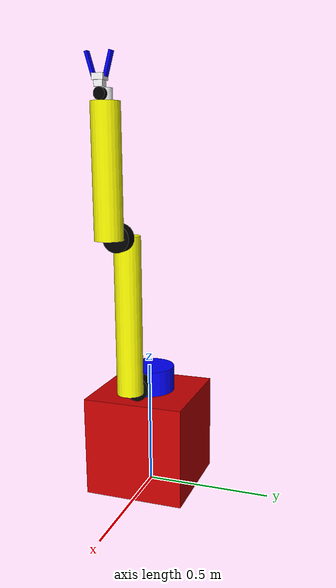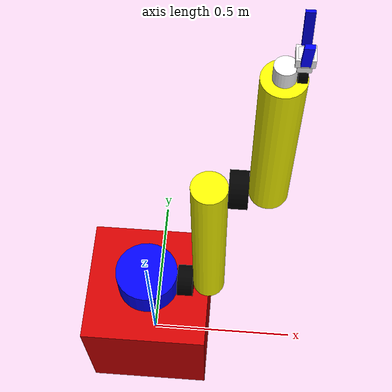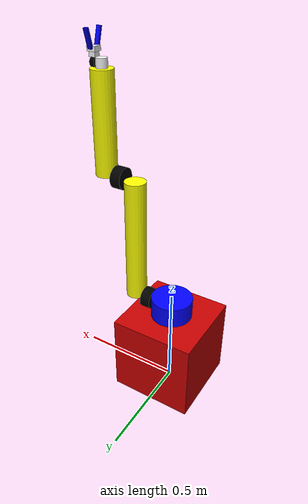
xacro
<?xml version="1.0" encoding="utf-8"?>
	<robot name="box_robots" xmlns:xacro="http://ros.org/wiki/xacro">
		<xacro:property name="box_length" value="0.4" />
                <xacro:property name="box_y" value="0.4" />
                <xacro:property name="box_z" value="0.4" />
		<xacro:property name="link1_radius" value="0.1" />
                <xacro:property name="link1_length" value="0.1" />
                <xacro:property name="link2_radius" value="0.05" />
		<xacro:property name="link2_length" value="0.05" />
                <xacro:property name="link3_radius" value="0.05" />
                <xacro:property name="link3_length" value="0.6" />
 		<xacro:property name="link4_radius" value="0.05" />
		<xacro:property name="link4_length" value="0.05" />
		<xacro:property name="link5_radius" value="0.05" />
		<xacro:property name="link5_length" value="0.45" />
		<xacro:property name="link6_radius" value="0.025" />
		<xacro:property name="link6_length" value="0.04" />
		<xacro:property name="link7_radius" value="0.02" />
		<xacro:property name="link7_length" value="0.02" />
		<xacro:property name="link8_x" value="0.03" />
                <xacro:property name="link8_y" value="0.03" />
                <xacro:property name="link8_z" value="0.04" />
		<xacro:property name="link9_x" value="0.04" />
                <xacro:property name="link9_y" value="0.04" />
                <xacro:property name="link9_z" value="0.02" />
		<xacro:property name="link10_x" value="0.08" />
                <xacro:property name="link10_y" value="0.01" />
                <xacro:property name="link10_z" value="0.02" />
		<xacro:property name="link11_x" value="0.08" />
                <xacro:property name="link11_y" value="0.01" />
                <xacro:property name="link11_z" value="0.02" />

		<material name="blue">
				<color rgba="0 0 1 1"/>
		</material>

		<material name="black">
				<color rgba="0 0 0 1"/>
		</material>

		<material name="white">
				<color rgba="1 1 1 1"/>
		</material>

		<material name="red">
				<color rgba="0.8 0 0 1"/>
		</material>

		<material name="green">
				<color rgba="0 1 0 1"/>
		</material>

		<material name="yellow">
				<color rgba="1 1 0 1"/>
		</material>

		<link name ="world"/>
		<link name="box">
				<visual>
				    <geometry>
				        <box size="${box_length} ${box_y} ${box_z}"/>
				    </geometry>
				    <origin xyz="0 0 ${box_z/2}"/>
				    <material name ="red"/>
				</visual>
				<collision>
					<geometry>
						 <box size="${box_length} ${box_y} ${box_z}"/>
					</geometry>
				</collision>
				<inertial>
					<mass value="50.0"/>
					<inertia ixx="0.1" ixy="0.0" ixz="0.0" iyy="0.1" iyz="0.0" izz="0.1"/>
				</inertial>
		</link>
		<joint name="world_to_box" type="fixed">
			<origin xyz="0 0 0" rpy="0 0 0"/>
			<parent link="world"/>
			<child link="box"/>
		</joint>

		<link name="link1">
				<visual>
				    <geometry>
				        <cylinder radius="${link1_radius}" length="${link1_length}"/>
				    </geometry>
				    <origin xyz="0 0 ${link1_length/2}"/>
				    <material name ="blue"/>
				</visual>
				<inertial>
					<mass value="1.0"/>
					<inertia ixx="0.1" ixy="0.0" ixz="0.0" iyy="0.1" iyz="0.0" izz="0.1"/>
				</inertial>
				<collision>
					<geometry>
						 <cylinder radius="${link1_radius}" length="${link1_length}"/>
					</geometry>
				</collision>
		</link>
		<joint name="box_link1" type="revolute">
			<axis xyz="0 0 1"/>
			<limit effort="100.0" lower="-3.1416" upper="3.1416" velocity="0.1"/>
			<parent link="box"/>
			<child link="link1"/>
			<origin rpy="0 0 0" xyz="0 0 ${box_z}"/>
		</joint>

		<link name="link2">
				<visual>
				    <geometry>
				        <cylinder radius="${link2_radius}" length="${link2_length}"/>
				    </geometry>
				    <origin rpy='0 1.57 0' xyz="${link2_radius/2} 0 0"/>
				    <material name ="black"/>
				</visual>
				<inertial>
					<mass value="0.5"/>
					<inertia ixx="0.1" ixy="0.0" ixz="0.0" iyy="0.1" iyz="0.0" izz="0.1"/>
				</inertial>
				<collision>
					<geometry>
						 <cylinder radius="${link2_radius}" length="${link2_length}"/>
					</geometry>
				</collision>
		</link>
		<joint name="link1_link2" type="fixed">
			<parent link="link1"/>
			<child link="link2"/>
			<origin rpy="0 0 0" xyz="${link1_radius} 0 ${link1_length/2}"/>
		</joint>
		<link name="link3">
				<visual>
				    <geometry>
				        <cylinder radius="${link3_radius}" length="${link3_length}"/>
				    </geometry>
				    <origin rpy='0 0 0' xyz="${link3_radius} 0 ${link3_length/2}"/>
				    <material name ="yellow"/>
				</visual>
				<inertial>
					<mass value="5.0"/>
					<inertia ixx="0.1" ixy="0.0" ixz="0.0" iyy="0.1" iyz="0.0" izz="0.1"/>
				</inertial>
				<collision>
					<geometry>
						 <cylinder radius="${link3_radius}" length="${link3_length}"/>
					</geometry>
				</collision>
		</link>
		<joint name="link2_link3" type="revolute">
			<axis xyz="1 0 0"/>
			<limit effort="100.0" lower="-1.57" upper="1.57" velocity="0.5"/>
			<parent link="link2"/>
			<child link="link3"/>
			<origin rpy="0 0 0" xyz="${link2_length} 0 0"/>
		</joint>

		<link name="link4">
				<visual>
				 <geometry>
				     <cylinder radius="${link4_radius}" length="${link4_length}"/>
				 </geometry>
				  <origin rpy='0 1.57 0' xyz="${link4_radius/2} 0 0"/>
				 <material name ="black"/>
				</visual>
				 <inertial>
				 	<mass value="0.5"/>
					<inertia ixx="0.1" ixy="0.0" ixz="0.0" iyy="0.1" iyz="0.0" izz="0.1"/>
				 </inertial>
					<collision>
						<geometry>
							 <cylinder radius="${link4_radius}" length="${link4_length}"/>
						</geometry>
					</collision>
		</link>
		<joint name="link3_link4" type="fixed">
			<parent link="link3"/>
			<child link="link4"/>
			<origin rpy="0 0 0" xyz="${link3_radius+link4_radius} 0 ${link3_length}"/>
		</joint>

		<link name="link5">
				<visual>
					<geometry>
						<cylinder radius="${link5_radius}" length="${link5_length}"/>
					</geometry>
						<origin rpy='0 0 0' xyz="${link4_radius} 0 ${link5_length/2}"/>
						<material name ="yellow"/>
						</visual>
					<inertial>>
						<mass value="1.0"/>
						<inertia ixx="0.1" ixy="0.0" ixz="0.0" iyy="0.1" iyz="0.0" izz="0.1"/>
					</inertial>
					<collision>
						<geometry>
							 <cylinder radius="${link5_radius}" length="${link5_length}"/>
						</geometry>
					</collision>
		</link>
		<joint name="link4_link5" type="revolute">
		<axis xyz="1 0 0"/>
		<limit effort="100.0" lower="-1.57" upper="1.57" velocity="0.5"/>
		<parent link="link4"/>
		<child link="link5"/>
		<origin rpy="0 0 0" xyz="${link4_radius} 0 0"/>
		</joint>

		<link name="link6">
				<visual>
				 <geometry>
				       <cylinder radius="${link6_radius}" length="${link6_length}"/>
				 </geometry>
					<origin rpy='0 0 0' xyz="0 0 ${link6_length/2}"/>
					<material name ="white"/>
			        </visual>
				 <inertial>
				  <mass value="1.0"/>
				  <inertia ixx="0.1" ixy="0.0" ixz="0.0" iyy="0.1" iyz="0.0" izz="0.1"/>
				 </inertial>
				 	<collision>
						<geometry>
							<cylinder radius="${link6_radius}" length="${link6_length}"/>
						</geometry>
					</collision>
		</link>
		<joint name="link5_link6" type="revolute">
		<axis xyz="0 0 1"/>
		<limit effort="100.0" lower="-3.1416" upper="3.1416" velocity="0.5"/>
		<parent link="link5"/>
		<child link="link6"/>
		<origin rpy="0 0 0" xyz="${link5_radius} 0 ${link5_length}"/>
		</joint>

		<link name="link7">
				<visual>
					<geometry>
						<cylinder radius="${link7_radius}" length="${link7_length}"/>
					</geometry>
						<origin rpy='0 1.57 0' xyz="${link7_radius/2} 0 0"/>
						<material name ="black"/>
				</visual>
					<inertial>
						<mass value="1.0"/>
						<inertia ixx="0.1" ixy="0.0" ixz="0.0" iyy="0.1" iyz="0.0" izz="0.1"/>
				</inertial>
					<collision>
						<geometry>
							<cylinder radius="${link7_radius}" length="${link7_length}"/>
						</geometry>
					</collision>
		</link>
		<joint name="link6_link7" type="fixed">
		<parent link="link6"/>
		<child link="link7"/>
		<origin rpy="0 0 0" xyz="${link6_radius} 0 ${link6_length/2}"/>
		</joint>

		<link name="link8">
				<visual>
					<geometry>
						<box size="${link8_x} ${link8_y} ${link8_z}"/>
					</geometry>
						<origin rpy='0 0 0' xyz="0 0 ${link8_z/2}"/>
						<material name ="white"/>
				</visual>
					<inertial>
						<mass value="1.0"/>
						<inertia ixx="0.1" ixy="0.0" ixz="0.0" iyy="0.1" iyz="0.0" izz="0.1"/>
					</inertial>
						<collision>
							<geometry>
								<box size="${link8_x} ${link8_y} ${link8_z}"/>
							</geometry>
						</collision>
		</link>
		<joint name="link7_link8" type="revolute">
		<axis xyz="1 0 0"/>
		<limit effort="100.0" lower="-1.57" upper="1.57" velocity="0.5"/>
		<parent link="link7"/>
		<child link="link8"/>
		<origin rpy="0 0 0" xyz="${link7_radius/2} 0 ${link7_length}"/>
		</joint>

		<link name="link9">
				<visual>
					<geometry>
						<box size="${link9_x} ${link9_y} ${link9_z}"/>
					</geometry>
						<origin rpy='0 0 0' xyz="0 0 ${link9_z/2}"/>
						<material name ="white"/>
				</visual>
					<inertial>
						<mass value="0.5"/>
						<inertia ixx="0.1" ixy="0.0" ixz="0.0" iyy="0.1" iyz="0.0" izz="0.1"/>
					</inertial>
						<collision>
							<geometry>
								<box size="${link9_x} ${link9_y} ${link9_z}"/>
							</geometry>
						</collision>
		</link>
		<joint name="link8_link9" type="fixed">
		<parent link="link8"/>
		<child link="link9"/>
		<origin rpy="0 0 0" xyz="0 0 ${link8_z/2}"/>
		</joint>

		<link name="link10">
				<visual>
					<geometry>
						<box size="${link10_x} ${link10_y} ${link10_z}"/>
					</geometry>
						<origin rpy='0 1.57 0' xyz="0 0 ${link9_z+link10_z}"/>
						<material name ="blue"/>
				</visual>
					<inertial>
						<mass value="0.2"/>
						<inertia ixx="0.1" ixy="0.0" ixz="0.0" iyy="0.1" iyz="0.0" izz="0.1"/>
					</inertial>
						<collision>
							<geometry>
								 <box size="${link10_x} ${link10_y} ${link10_z}"/>
							</geometry>
						</collision>
		</link>
		<joint name="link9_link10" type="revolute">
		<axis xyz="1 0 0"/>
		<limit effort="100.0" lower="0.25" upper="1.18" velocity="0.5"/>
		<parent link="link9"/>
		<child link="link10"/>
		<origin rpy="-1 0 0" xyz="0 ${link9_y/2} ${link9_z/2}"/>
		</joint>

		<link name="link11">
				<visual>
					<geometry>
						<box size="${link11_x} ${link11_y} ${link11_z}"/>
					</geometry>
						<origin rpy='0 1.57 0' xyz="0 0 ${link9_z+link10_z}"/>
						<material name ="blue"/>
				</visual>
					<inertial>
						<mass value="0.2"/>
						<inertia ixx="0.1" ixy="0.0" ixz="0.0" iyy="0.1" iyz="0.0" izz="0.1"/>
					</inertial>
						<collision>
							<geometry>
								<box size="${link11_x} ${link11_y} ${link11_z}"/>
							</geometry>
						</collision>
		</link>
		<joint name="link9_link11" type="revolute">
		<axis xyz="1 0 0"/>
		<limit effort="100.0" lower="-1.18" upper="-0.25" velocity="0.5"/>
		<parent link="link9"/>
		<child link="link11"/>
		<origin rpy="1 0 0" xyz="0 ${-link9_y/2} ${link9_z/2}"/>
		</joint>

	</robot>
